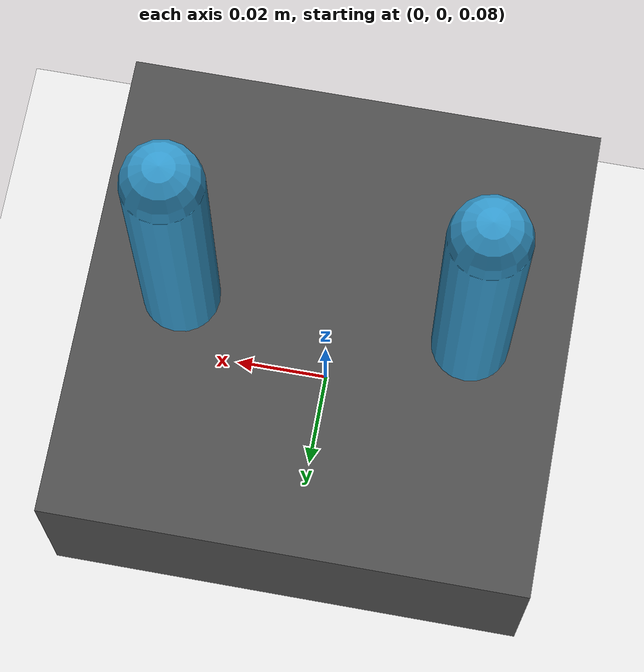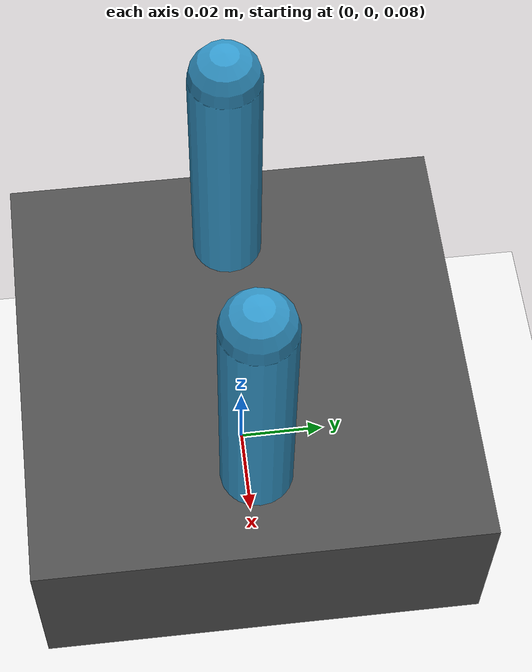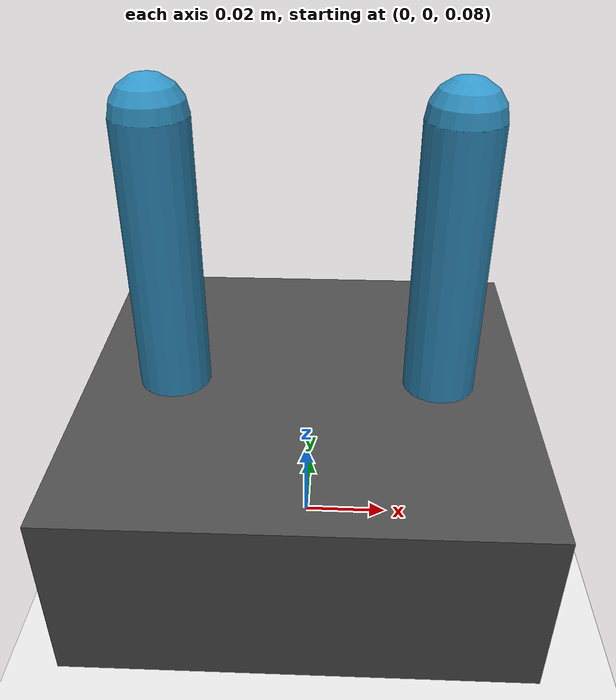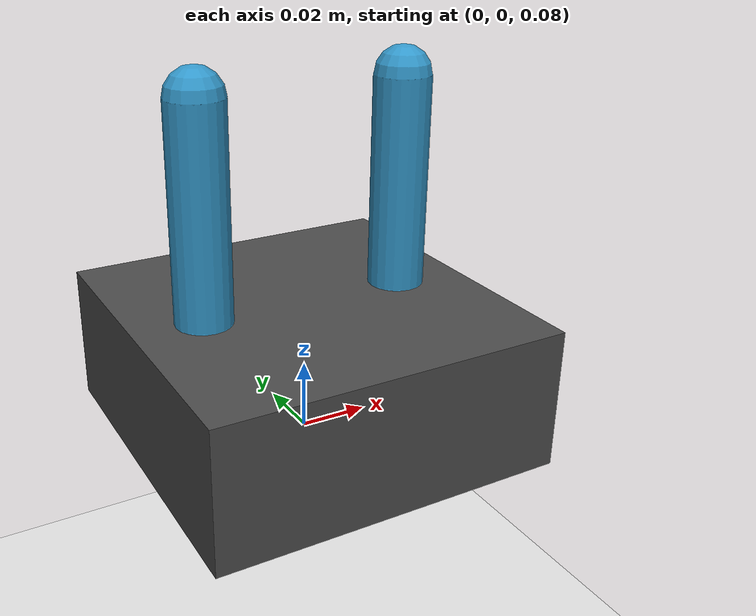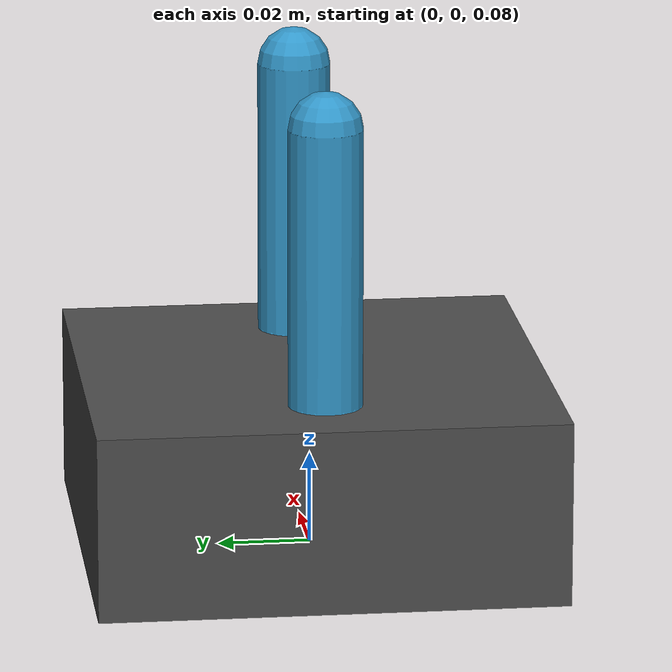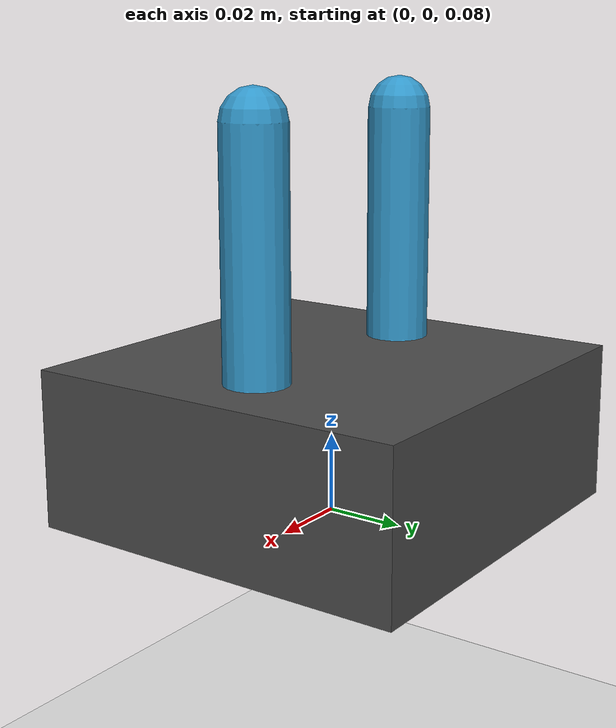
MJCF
<?xml version="1.0" ?>
<mujoco model="egg_gripper">
  <compiler angle="radian"/>
  <option timestep="0.002" gravity="0 0 -9.81"/>

  <worldbody>
    <light diffuse=".5 .5 .5" pos="0 0 3" dir="0 0 -1"/>
    <geom name="floor" type="plane" size="1 1 0.1" rgba=".9 .9 .9 1"/>

    <body name="base" pos="0 0 0.1">
      <geom name="base_geom" type="box" size="0.05 0.05 0.02" mass="0.1" rgba="0.3 0.3 0.3 1"/>

      <body name="finger_left" pos="-0.03 0 0.02">
        <joint name="finger_left_joint" type="hinge" axis="0 1 0" range="-0.5 0.5"/>
        <geom name="finger_left_geom" type="capsule" fromto="0 0 0 0 0 0.06" size="0.008" mass="0.02" rgba="0.2 0.6 0.8 1"/>
      </body>

      <body name="finger_right" pos="0.03 0 0.02">
        <joint name="finger_right_joint" type="hinge" axis="0 1 0" range="-0.5 0.5"/>
        <geom name="finger_right_geom" type="capsule" fromto="0 0 0 0 0 0.06" size="0.008" mass="0.02" rgba="0.2 0.6 0.8 1"/>
      </body>
    </body>
  </worldbody>

  <actuator>
    <position name="finger_left_act" joint="finger_left_joint" kp="10"/>
    <position name="finger_right_act" joint="finger_right_joint" kp="10"/>
  </actuator>
</mujoco>
